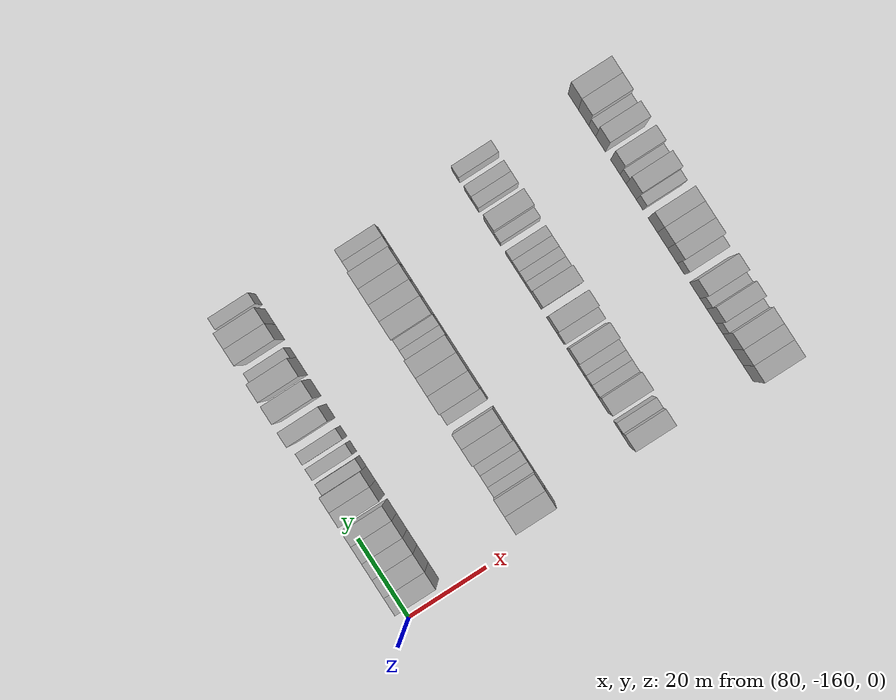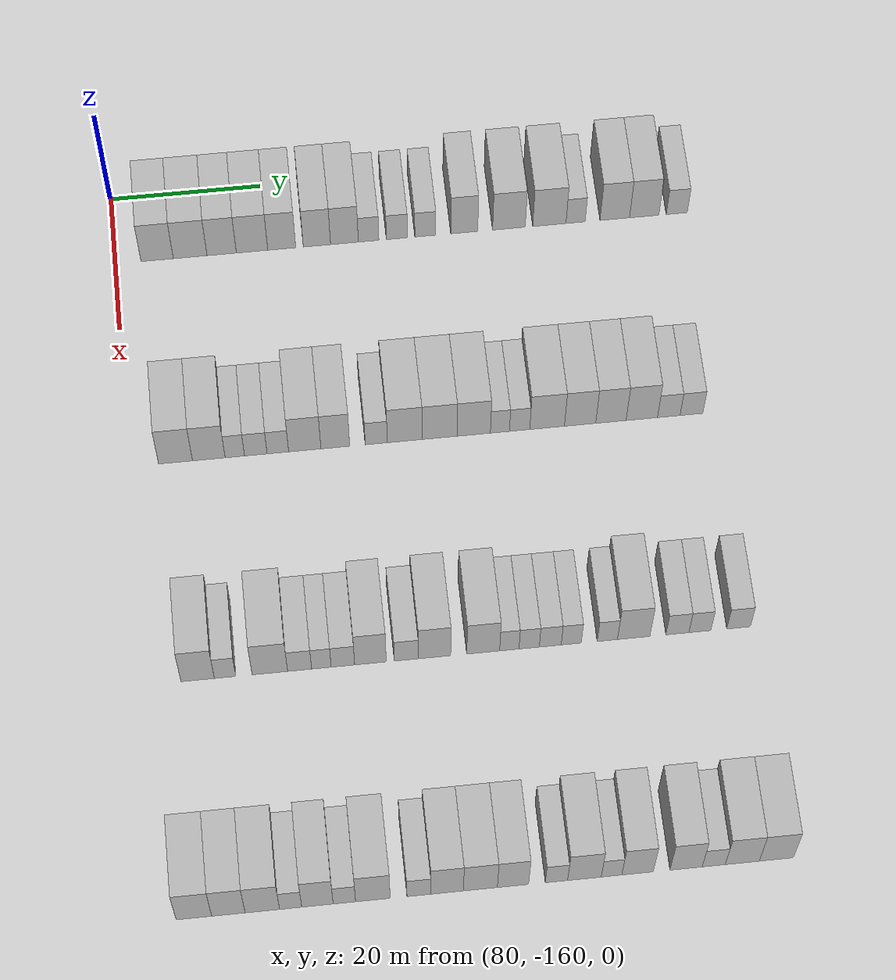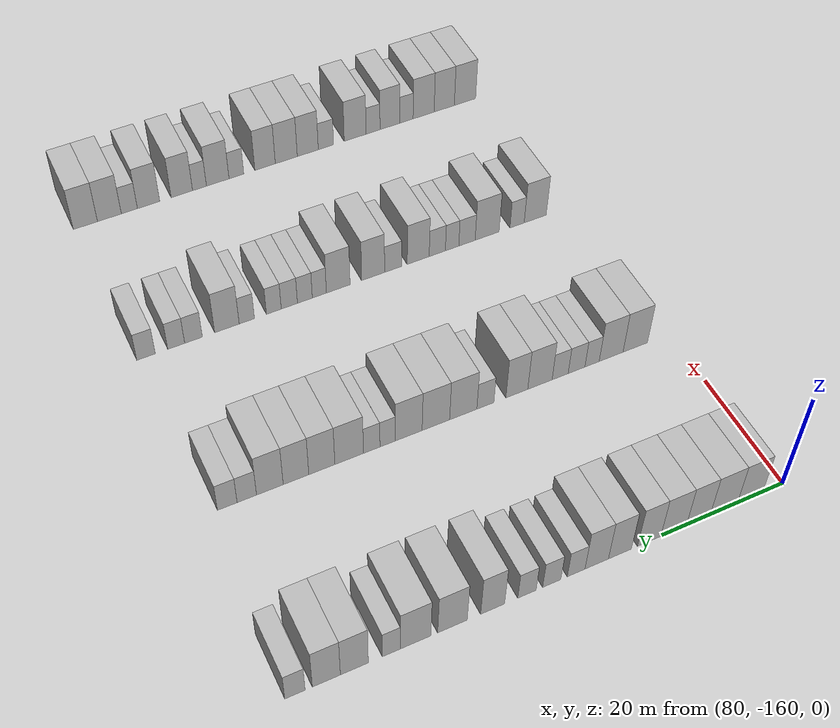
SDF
<sdf version="1.6">
 <world name="default">
  <model name="building_523">
   <static>1</static>
   <pose>85.0000 -154.4309 0 0.000000 0.000000 0.000000</pose>
   <link name="link">
    <pose>0 0 4.50 0 0 0</pose>
    <collision name="collision"><geometry><box><size>10.0000 4.2724 9.0000</size></box></geometry></collision>
    <visual name="visual">
     <cast_shadows>0</cast_shadows>
     <geometry><box><size>10.0000 4.2724 9.0000</size></box></geometry>
     <material>
      <script>
       <uri>model://HANNAS_wall/materials/scripts</uri>
       <uri>model://HANNAS_wall/materials/textures</uri>
       <name>vrc/HANNAS_wall</name>
      </script>
     </material>
    </visual>
   </link>
  </model>
  <model name="building_524">
   <static>1</static>
   <pose>85.0000 -150.0572 0 0.000000 0.000000 0.000000</pose>
   <link name="link">
    <pose>0 0 4.50 0 0 0</pose>
    <collision name="collision"><geometry><box><size>10.0000 4.4751 9.0000</size></box></geometry></collision>
    <visual name="visual">
     <cast_shadows>0</cast_shadows>
     <geometry><box><size>10.0000 4.4751 9.0000</size></box></geometry>
     <material>
      <script>
       <uri>model://HANNAS_wall/materials/scripts</uri>
       <uri>model://HANNAS_wall/materials/textures</uri>
       <name>vrc/HANNAS_wall</name>
      </script>
     </material>
    </visual>
   </link>
  </model>
  <model name="building_525">
   <static>1</static>
   <pose>85.0000 -145.8691 0 0.000000 0.000000 0.000000</pose>
   <link name="link">
    <pose>0 0 4.50 0 0 0</pose>
    <collision name="collision"><geometry><box><size>10.0000 3.9010 9.0000</size></box></geometry></collision>
    <visual name="visual">
     <cast_shadows>0</cast_shadows>
     <geometry><box><size>10.0000 3.9010 9.0000</size></box></geometry>
     <material>
      <script>
       <uri>model://HANNAS_wall/materials/scripts</uri>
       <uri>model://HANNAS_wall/materials/textures</uri>
       <name>vrc/HANNAS_wall</name>
      </script>
     </material>
    </visual>
   </link>
  </model>
  <model name="building_526">
   <static>1</static>
   <pose>85.0000 -141.8304 0 0.000000 0.000000 0.000000</pose>
   <link name="link">
    <pose>0 0 4.50 0 0 0</pose>
    <collision name="collision"><geometry><box><size>10.0000 4.1765 9.0000</size></box></geometry></collision>
    <visual name="visual">
     <cast_shadows>0</cast_shadows>
     <geometry><box><size>10.0000 4.1765 9.0000</size></box></geometry>
     <material>
      <script>
       <uri>model://HANNAS_wall/materials/scripts</uri>
       <uri>model://HANNAS_wall/materials/textures</uri>
       <name>vrc/HANNAS_wall</name>
      </script>
     </material>
    </visual>
   </link>
  </model>
  <model name="building_527">
   <static>1</static>
   <pose>85.0000 -137.8835 0 0.000000 0.000000 0.000000</pose>
   <link name="link">
    <pose>0 0 4.50 0 0 0</pose>
    <collision name="collision"><geometry><box><size>10.0000 3.7172 9.0000</size></box></geometry></collision>
    <visual name="visual">
     <cast_shadows>0</cast_shadows>
     <geometry><box><size>10.0000 3.7172 9.0000</size></box></geometry>
     <material>
      <script>
       <uri>model://HANNAS_wall/materials/scripts</uri>
       <uri>model://HANNAS_wall/materials/textures</uri>
       <name>vrc/HANNAS_wall</name>
      </script>
     </material>
    </visual>
   </link>
  </model>
  <model name="building_528">
   <static>1</static>
   <pose>85.0000 -133.2102 0 0.000000 0.000000 0.000000</pose>
   <link name="link">
    <pose>0 0 4.50 0 0 0</pose>
    <collision name="collision"><geometry><box><size>10.0000 3.6293 9.0000</size></box></geometry></collision>
    <visual name="visual">
     <cast_shadows>0</cast_shadows>
     <geometry><box><size>10.0000 3.6293 9.0000</size></box></geometry>
     <material>
      <script>
       <uri>model://HANNAS_wall/materials/scripts</uri>
       <uri>model://HANNAS_wall/materials/textures</uri>
       <name>vrc/HANNAS_wall</name>
      </script>
     </material>
    </visual>
   </link>
  </model>
  <model name="building_529">
   <static>1</static>
   <pose>85.0000 -129.5449 0 0.000000 0.000000 0.000000</pose>
   <link name="link">
    <pose>0 0 4.50 0 0 0</pose>
    <collision name="collision"><geometry><box><size>10.0000 3.7014 9.0000</size></box></geometry></collision>
    <visual name="visual">
     <cast_shadows>0</cast_shadows>
     <geometry><box><size>10.0000 3.7014 9.0000</size></box></geometry>
     <material>
      <script>
       <uri>model://HANNAS_wall/materials/scripts</uri>
       <uri>model://HANNAS_wall/materials/textures</uri>
       <name>vrc/HANNAS_wall</name>
      </script>
     </material>
    </visual>
   </link>
  </model>
  <model name="building_530">
   <static>1</static>
   <pose>85.0000 -126.3220 0 0.000000 0.000000 0.000000</pose>
   <link name="link">
    <pose>0 0 3.00 0 0 0</pose>
    <collision name="collision"><geometry><box><size>10.0000 2.7443 6.0000</size></box></geometry></collision>
    <visual name="visual">
     <cast_shadows>0</cast_shadows>
     <geometry><box><size>10.0000 2.7443 6.0000</size></box></geometry>
     <material>
      <script>
       <uri>model://HANNAS_wall/materials/scripts</uri>
       <uri>model://HANNAS_wall/materials/textures</uri>
       <name>vrc/HANNAS_wall</name>
      </script>
     </material>
    </visual>
   </link>
  </model>
  <model name="building_531">
   <static>1</static>
   <pose>85.0000 -122.5462 0 0.000000 0.000000 0.000000</pose>
   <link name="link">
    <pose>0 0 3.00 0 0 0</pose>
    <collision name="collision"><geometry><box><size>10.0000 2.8073 6.0000</size></box></geometry></collision>
    <visual name="visual">
     <cast_shadows>0</cast_shadows>
     <geometry><box><size>10.0000 2.8073 6.0000</size></box></geometry>
     <material>
      <script>
       <uri>model://HANNAS_wall/materials/scripts</uri>
       <uri>model://HANNAS_wall/materials/textures</uri>
       <name>vrc/HANNAS_wall</name>
      </script>
     </material>
    </visual>
   </link>
  </model>
  <model name="building_532">
   <static>1</static>
   <pose>85.0000 -118.7449 0 0.000000 0.000000 0.000000</pose>
   <link name="link">
    <pose>0 0 3.00 0 0 0</pose>
    <collision name="collision"><geometry><box><size>10.0000 2.7954 6.0000</size></box></geometry></collision>
    <visual name="visual">
     <cast_shadows>0</cast_shadows>
     <geometry><box><size>10.0000 2.7954 6.0000</size></box></geometry>
     <material>
      <script>
       <uri>model://HANNAS_wall/materials/scripts</uri>
       <uri>model://HANNAS_wall/materials/textures</uri>
       <name>vrc/HANNAS_wall</name>
      </script>
     </material>
    </visual>
   </link>
  </model>
  <model name="building_533">
   <static>1</static>
   <pose>85.0000 -113.5452 0 0.000000 0.000000 0.000000</pose>
   <link name="link">
    <pose>0 0 4.50 0 0 0</pose>
    <collision name="collision"><geometry><box><size>10.0000 3.6041 9.0000</size></box></geometry></collision>
    <visual name="visual">
     <cast_shadows>0</cast_shadows>
     <geometry><box><size>10.0000 3.6041 9.0000</size></box></geometry>
     <material>
      <script>
       <uri>model://HANNAS_wall/materials/scripts</uri>
       <uri>model://HANNAS_wall/materials/textures</uri>
       <name>vrc/HANNAS_wall</name>
      </script>
     </material>
    </visual>
   </link>
  </model>
  <model name="building_534">
   <static>1</static>
   <pose>85.0000 -107.5557 0 0.000000 0.000000 0.000000</pose>
   <link name="link">
    <pose>0 0 4.50 0 0 0</pose>
    <collision name="collision"><geometry><box><size>10.0000 4.3749 9.0000</size></box></geometry></collision>
    <visual name="visual">
     <cast_shadows>0</cast_shadows>
     <geometry><box><size>10.0000 4.3749 9.0000</size></box></geometry>
     <material>
      <script>
       <uri>model://HANNAS_wall/materials/scripts</uri>
       <uri>model://HANNAS_wall/materials/textures</uri>
       <name>vrc/HANNAS_wall</name>
      </script>
     </material>
    </visual>
   </link>
  </model>
  <model name="building_535">
   <static>1</static>
   <pose>85.0000 -102.1350 0 0.000000 0.000000 0.000000</pose>
   <link name="link">
    <pose>0 0 4.50 0 0 0</pose>
    <collision name="collision"><geometry><box><size>10.0000 4.4664 9.0000</size></box></geometry></collision>
    <visual name="visual">
     <cast_shadows>0</cast_shadows>
     <geometry><box><size>10.0000 4.4664 9.0000</size></box></geometry>
     <material>
      <script>
       <uri>model://HANNAS_wall/materials/scripts</uri>
       <uri>model://HANNAS_wall/materials/textures</uri>
       <name>vrc/HANNAS_wall</name>
      </script>
     </material>
    </visual>
   </link>
  </model>
  <model name="building_536">
   <static>1</static>
   <pose>85.0000 -98.6148 0 0.000000 0.000000 0.000000</pose>
   <link name="link">
    <pose>0 0 3.00 0 0 0</pose>
    <collision name="collision"><geometry><box><size>10.0000 2.5741 6.0000</size></box></geometry></collision>
    <visual name="visual">
     <cast_shadows>0</cast_shadows>
     <geometry><box><size>10.0000 2.5741 6.0000</size></box></geometry>
     <material>
      <script>
       <uri>model://HANNAS_wall/materials/scripts</uri>
       <uri>model://HANNAS_wall/materials/textures</uri>
       <name>vrc/HANNAS_wall</name>
      </script>
     </material>
    </visual>
   </link>
  </model>
  <model name="building_537">
   <static>1</static>
   <pose>85.0000 -93.3436 0 0.000000 0.000000 0.000000</pose>
   <link name="link">
    <pose>0 0 4.50 0 0 0</pose>
    <collision name="collision"><geometry><box><size>10.0000 3.9681 9.0000</size></box></geometry></collision>
    <visual name="visual">
     <cast_shadows>0</cast_shadows>
     <geometry><box><size>10.0000 3.9681 9.0000</size></box></geometry>
     <material>
      <script>
       <uri>model://HANNAS_wall/materials/scripts</uri>
       <uri>model://HANNAS_wall/materials/textures</uri>
       <name>vrc/HANNAS_wall</name>
      </script>
     </material>
    </visual>
   </link>
  </model>
  <model name="building_538">
   <static>1</static>
   <pose>85.0000 -89.3867 0 0.000000 0.000000 0.000000</pose>
   <link name="link">
    <pose>0 0 4.50 0 0 0</pose>
    <collision name="collision"><geometry><box><size>10.0000 3.9457 9.0000</size></box></geometry></collision>
    <visual name="visual">
     <cast_shadows>0</cast_shadows>
     <geometry><box><size>10.0000 3.9457 9.0000</size></box></geometry>
     <material>
      <script>
       <uri>model://HANNAS_wall/materials/scripts</uri>
       <uri>model://HANNAS_wall/materials/textures</uri>
       <name>vrc/HANNAS_wall</name>
      </script>
     </material>
    </visual>
   </link>
  </model>
  <model name="building_539">
   <static>1</static>
   <pose>85.0000 -85.0003 0 0.000000 0.000000 0.000000</pose>
   <link name="link">
    <pose>0 0 3.00 0 0 0</pose>
    <collision name="collision"><geometry><box><size>10.0000 2.8271 6.0000</size></box></geometry></collision>
    <visual name="visual">
     <cast_shadows>0</cast_shadows>
     <geometry><box><size>10.0000 2.8271 6.0000</size></box></geometry>
     <material>
      <script>
       <uri>model://HANNAS_wall/materials/scripts</uri>
       <uri>model://HANNAS_wall/materials/textures</uri>
       <name>vrc/HANNAS_wall</name>
      </script>
     </material>
    </visual>
   </link>
  </model>
  <model name="building_744">
   <static>1</static>
   <pose>115.0000 -153.8746 0 0.000000 0.000000 0.000000</pose>
   <link name="link">
    <pose>0 0 4.50 0 0 0</pose>
    <collision name="collision"><geometry><box><size>10.0000 4.3307 9.0000</size></box></geometry></collision>
    <visual name="visual">
     <cast_shadows>0</cast_shadows>
     <geometry><box><size>10.0000 4.3307 9.0000</size></box></geometry>
     <material>
      <script>
       <uri>model://HANNAS_wall/materials/scripts</uri>
       <uri>model://HANNAS_wall/materials/textures</uri>
       <name>vrc/HANNAS_wall</name>
      </script>
     </material>
    </visual>
   </link>
  </model>
  <model name="building_745">
   <static>1</static>
   <pose>115.0000 -149.6188 0 0.000000 0.000000 0.000000</pose>
   <link name="link">
    <pose>0 0 4.50 0 0 0</pose>
    <collision name="collision"><geometry><box><size>10.0000 4.1810 9.0000</size></box></geometry></collision>
    <visual name="visual">
     <cast_shadows>0</cast_shadows>
     <geometry><box><size>10.0000 4.1810 9.0000</size></box></geometry>
     <material>
      <script>
       <uri>model://HANNAS_wall/materials/scripts</uri>
       <uri>model://HANNAS_wall/materials/textures</uri>
       <name>vrc/HANNAS_wall</name>
      </script>
     </material>
    </visual>
   </link>
  </model>
  <model name="building_746">
   <static>1</static>
   <pose>115.0000 -146.2890 0 0.000000 0.000000 0.000000</pose>
   <link name="link">
    <pose>0 0 3.00 0 0 0</pose>
    <collision name="collision"><geometry><box><size>10.0000 2.4787 6.0000</size></box></geometry></collision>
    <visual name="visual">
     <cast_shadows>0</cast_shadows>
     <geometry><box><size>10.0000 2.4787 6.0000</size></box></geometry>
     <material>
      <script>
       <uri>model://HANNAS_wall/materials/scripts</uri>
       <uri>model://HANNAS_wall/materials/textures</uri>
       <name>vrc/HANNAS_wall</name>
      </script>
     </material>
    </visual>
   </link>
  </model>
  <model name="building_747">
   <static>1</static>
   <pose>115.0000 -143.6018 0 0.000000 0.000000 0.000000</pose>
   <link name="link">
    <pose>0 0 3.00 0 0 0</pose>
    <collision name="collision"><geometry><box><size>10.0000 2.8956 6.0000</size></box></geometry></collision>
    <visual name="visual">
     <cast_shadows>0</cast_shadows>
     <geometry><box><size>10.0000 2.8956 6.0000</size></box></geometry>
     <material>
      <script>
       <uri>model://HANNAS_wall/materials/scripts</uri>
       <uri>model://HANNAS_wall/materials/textures</uri>
       <name>vrc/HANNAS_wall</name>
      </script>
     </material>
    </visual>
   </link>
  </model>
  <model name="building_748">
   <static>1</static>
   <pose>115.0000 -140.7740 0 0.000000 0.000000 0.000000</pose>
   <link name="link">
    <pose>0 0 3.00 0 0 0</pose>
    <collision name="collision"><geometry><box><size>10.0000 2.7600 6.0000</size></box></geometry></collision>
    <visual name="visual">
     <cast_shadows>0</cast_shadows>
     <geometry><box><size>10.0000 2.7600 6.0000</size></box></geometry>
     <material>
      <script>
       <uri>model://HANNAS_wall/materials/scripts</uri>
       <uri>model://HANNAS_wall/materials/textures</uri>
       <name>vrc/HANNAS_wall</name>
      </script>
     </material>
    </visual>
   </link>
  </model>
  <model name="building_749">
   <static>1</static>
   <pose>115.0000 -137.3222 0 0.000000 0.000000 0.000000</pose>
   <link name="link">
    <pose>0 0 4.50 0 0 0</pose>
    <collision name="collision"><geometry><box><size>10.0000 4.1437 9.0000</size></box></geometry></collision>
    <visual name="visual">
     <cast_shadows>0</cast_shadows>
     <geometry><box><size>10.0000 4.1437 9.0000</size></box></geometry>
     <material>
      <script>
       <uri>model://HANNAS_wall/materials/scripts</uri>
       <uri>model://HANNAS_wall/materials/textures</uri>
       <name>vrc/HANNAS_wall</name>
      </script>
     </material>
    </visual>
   </link>
  </model>
  <model name="building_750">
   <static>1</static>
   <pose>115.0000 -133.4044 0 0.000000 0.000000 0.000000</pose>
   <link name="link">
    <pose>0 0 4.50 0 0 0</pose>
    <collision name="collision"><geometry><box><size>10.0000 3.6919 9.0000</size></box></geometry></collision>
    <visual name="visual">
     <cast_shadows>0</cast_shadows>
     <geometry><box><size>10.0000 3.6919 9.0000</size></box></geometry>
     <material>
      <script>
       <uri>model://HANNAS_wall/materials/scripts</uri>
       <uri>model://HANNAS_wall/materials/textures</uri>
       <name>vrc/HANNAS_wall</name>
      </script>
     </material>
    </visual>
   </link>
  </model>
  <model name="building_751">
   <static>1</static>
   <pose>115.0000 -128.1394 0 0.000000 0.000000 0.000000</pose>
   <link name="link">
    <pose>0 0 3.00 0 0 0</pose>
    <collision name="collision"><geometry><box><size>10.0000 2.8380 6.0000</size></box></geometry></collision>
    <visual name="visual">
     <cast_shadows>0</cast_shadows>
     <geometry><box><size>10.0000 2.8380 6.0000</size></box></geometry>
     <material>
      <script>
       <uri>model://HANNAS_wall/materials/scripts</uri>
       <uri>model://HANNAS_wall/materials/textures</uri>
       <name>vrc/HANNAS_wall</name>
      </script>
     </material>
    </visual>
   </link>
  </model>
  <model name="building_752">
   <static>1</static>
   <pose>115.0000 -124.4751 0 0.000000 0.000000 0.000000</pose>
   <link name="link">
    <pose>0 0 4.50 0 0 0</pose>
    <collision name="collision"><geometry><box><size>10.0000 4.4907 9.0000</size></box></geometry></collision>
    <visual name="visual">
     <cast_shadows>0</cast_shadows>
     <geometry><box><size>10.0000 4.4907 9.0000</size></box></geometry>
     <material>
      <script>
       <uri>model://HANNAS_wall/materials/scripts</uri>
       <uri>model://HANNAS_wall/materials/textures</uri>
       <name>vrc/HANNAS_wall</name>
      </script>
     </material>
    </visual>
   </link>
  </model>
  <model name="building_753">
   <static>1</static>
   <pose>115.0000 -119.9884 0 0.000000 0.000000 0.000000</pose>
   <link name="link">
    <pose>0 0 4.50 0 0 0</pose>
    <collision name="collision"><geometry><box><size>10.0000 4.4826 9.0000</size></box></geometry></collision>
    <visual name="visual">
     <cast_shadows>0</cast_shadows>
     <geometry><box><size>10.0000 4.4826 9.0000</size></box></geometry>
     <material>
      <script>
       <uri>model://HANNAS_wall/materials/scripts</uri>
       <uri>model://HANNAS_wall/materials/textures</uri>
       <name>vrc/HANNAS_wall</name>
      </script>
     </material>
    </visual>
   </link>
  </model>
  <model name="building_754">
   <static>1</static>
   <pose>115.0000 -115.5911 0 0.000000 0.000000 0.000000</pose>
   <link name="link">
    <pose>0 0 4.50 0 0 0</pose>
    <collision name="collision"><geometry><box><size>10.0000 4.3121 9.0000</size></box></geometry></collision>
    <visual name="visual">
     <cast_shadows>0</cast_shadows>
     <geometry><box><size>10.0000 4.3121 9.0000</size></box></geometry>
     <material>
      <script>
       <uri>model://HANNAS_wall/materials/scripts</uri>
       <uri>model://HANNAS_wall/materials/textures</uri>
       <name>vrc/HANNAS_wall</name>
      </script>
     </material>
    </visual>
   </link>
  </model>
  <model name="building_755">
   <static>1</static>
   <pose>115.0000 -112.2054 0 0.000000 0.000000 0.000000</pose>
   <link name="link">
    <pose>0 0 3.00 0 0 0</pose>
    <collision name="collision"><geometry><box><size>10.0000 2.4594 6.0000</size></box></geometry></collision>
    <visual name="visual">
     <cast_shadows>0</cast_shadows>
     <geometry><box><size>10.0000 2.4594 6.0000</size></box></geometry>
     <material>
      <script>
       <uri>model://HANNAS_wall/materials/scripts</uri>
       <uri>model://HANNAS_wall/materials/textures</uri>
       <name>vrc/HANNAS_wall</name>
      </script>
     </material>
    </visual>
   </link>
  </model>
  <model name="building_756">
   <static>1</static>
   <pose>115.0000 -109.6665 0 0.000000 0.000000 0.000000</pose>
   <link name="link">
    <pose>0 0 3.00 0 0 0</pose>
    <collision name="collision"><geometry><box><size>10.0000 2.6183 6.0000</size></box></geometry></collision>
    <visual name="visual">
     <cast_shadows>0</cast_shadows>
     <geometry><box><size>10.0000 2.6183 6.0000</size></box></geometry>
     <material>
      <script>
       <uri>model://HANNAS_wall/materials/scripts</uri>
       <uri>model://HANNAS_wall/materials/textures</uri>
       <name>vrc/HANNAS_wall</name>
      </script>
     </material>
    </visual>
   </link>
  </model>
  <model name="building_757">
   <static>1</static>
   <pose>115.0000 -106.1119 0 0.000000 0.000000 0.000000</pose>
   <link name="link">
    <pose>0 0 4.50 0 0 0</pose>
    <collision name="collision"><geometry><box><size>10.0000 4.4907 9.0000</size></box></geometry></collision>
    <visual name="visual">
     <cast_shadows>0</cast_shadows>
     <geometry><box><size>10.0000 4.4907 9.0000</size></box></geometry>
     <material>
      <script>
       <uri>model://HANNAS_wall/materials/scripts</uri>
       <uri>model://HANNAS_wall/materials/textures</uri>
       <name>vrc/HANNAS_wall</name>
      </script>
     </material>
    </visual>
   </link>
  </model>
  <model name="building_758">
   <static>1</static>
   <pose>115.0000 -101.8386 0 0.000000 0.000000 0.000000</pose>
   <link name="link">
    <pose>0 0 4.50 0 0 0</pose>
    <collision name="collision"><geometry><box><size>10.0000 4.0560 9.0000</size></box></geometry></collision>
    <visual name="visual">
     <cast_shadows>0</cast_shadows>
     <geometry><box><size>10.0000 4.0560 9.0000</size></box></geometry>
     <material>
      <script>
       <uri>model://HANNAS_wall/materials/scripts</uri>
       <uri>model://HANNAS_wall/materials/textures</uri>
       <name>vrc/HANNAS_wall</name>
      </script>
     </material>
    </visual>
   </link>
  </model>
  <model name="building_759">
   <static>1</static>
   <pose>115.0000 -97.8409 0 0.000000 0.000000 0.000000</pose>
   <link name="link">
    <pose>0 0 4.50 0 0 0</pose>
    <collision name="collision"><geometry><box><size>10.0000 3.9394 9.0000</size></box></geometry></collision>
    <visual name="visual">
     <cast_shadows>0</cast_shadows>
     <geometry><box><size>10.0000 3.9394 9.0000</size></box></geometry>
     <material>
      <script>
       <uri>model://HANNAS_wall/materials/scripts</uri>
       <uri>model://HANNAS_wall/materials/textures</uri>
       <name>vrc/HANNAS_wall</name>
      </script>
     </material>
    </visual>
   </link>
  </model>
  <model name="building_760">
   <static>1</static>
   <pose>115.0000 -93.8363 0 0.000000 0.000000 0.000000</pose>
   <link name="link">
    <pose>0 0 4.50 0 0 0</pose>
    <collision name="collision"><geometry><box><size>10.0000 4.0697 9.0000</size></box></geometry></collision>
    <visual name="visual">
     <cast_shadows>0</cast_shadows>
     <geometry><box><size>10.0000 4.0697 9.0000</size></box></geometry>
     <material>
      <script>
       <uri>model://HANNAS_wall/materials/scripts</uri>
       <uri>model://HANNAS_wall/materials/textures</uri>
       <name>vrc/HANNAS_wall</name>
      </script>
     </material>
    </visual>
   </link>
  </model>
  <model name="building_761">
   <static>1</static>
   <pose>115.0000 -90.3361 0 0.000000 0.000000 0.000000</pose>
   <link name="link">
    <pose>0 0 3.00 0 0 0</pose>
    <collision name="collision"><geometry><box><size>10.0000 2.9307 6.0000</size></box></geometry></collision>
    <visual name="visual">
     <cast_shadows>0</cast_shadows>
     <geometry><box><size>10.0000 2.9307 6.0000</size></box></geometry>
     <material>
      <script>
       <uri>model://HANNAS_wall/materials/scripts</uri>
       <uri>model://HANNAS_wall/materials/textures</uri>
       <name>vrc/HANNAS_wall</name>
      </script>
     </material>
    </visual>
   </link>
  </model>
  <model name="building_762">
   <static>1</static>
   <pose>115.0000 -87.3943 0 0.000000 0.000000 0.000000</pose>
   <link name="link">
    <pose>0 0 3.00 0 0 0</pose>
    <collision name="collision"><geometry><box><size>10.0000 2.9528 6.0000</size></box></geometry></collision>
    <visual name="visual">
     <cast_shadows>0</cast_shadows>
     <geometry><box><size>10.0000 2.9528 6.0000</size></box></geometry>
     <material>
      <script>
       <uri>model://HANNAS_wall/materials/scripts</uri>
       <uri>model://HANNAS_wall/materials/textures</uri>
       <name>vrc/HANNAS_wall</name>
      </script>
     </material>
    </visual>
   </link>
  </model>
  <model name="building_965">
   <static>1</static>
   <pose>145.0000 -153.0219 0 0.000000 0.000000 0.000000</pose>
   <link name="link">
    <pose>0 0 4.50 0 0 0</pose>
    <collision name="collision"><geometry><box><size>10.0000 4.1162 9.0000</size></box></geometry></collision>
    <visual name="visual">
     <cast_shadows>0</cast_shadows>
     <geometry><box><size>10.0000 4.1162 9.0000</size></box></geometry>
     <material>
      <script>
       <uri>model://HANNAS_wall/materials/scripts</uri>
       <uri>model://HANNAS_wall/materials/textures</uri>
       <name>vrc/HANNAS_wall</name>
      </script>
     </material>
    </visual>
   </link>
  </model>
  <model name="building_966">
   <static>1</static>
   <pose>145.0000 -149.6460 0 0.000000 0.000000 0.000000</pose>
   <link name="link">
    <pose>0 0 3.00 0 0 0</pose>
    <collision name="collision"><geometry><box><size>10.0000 2.6355 6.0000</size></box></geometry></collision>
    <visual name="visual">
     <cast_shadows>0</cast_shadows>
     <geometry><box><size>10.0000 2.6355 6.0000</size></box></geometry>
     <material>
      <script>
       <uri>model://HANNAS_wall/materials/scripts</uri>
       <uri>model://HANNAS_wall/materials/textures</uri>
       <name>vrc/HANNAS_wall</name>
      </script>
     </material>
    </visual>
   </link>
  </model>
  <model name="building_967">
   <static>1</static>
   <pose>145.0000 -144.1339 0 0.000000 0.000000 0.000000</pose>
   <link name="link">
    <pose>0 0 4.50 0 0 0</pose>
    <collision name="collision"><geometry><box><size>10.0000 4.3886 9.0000</size></box></geometry></collision>
    <visual name="visual">
     <cast_shadows>0</cast_shadows>
     <geometry><box><size>10.0000 4.3886 9.0000</size></box></geometry>
     <material>
      <script>
       <uri>model://HANNAS_wall/materials/scripts</uri>
       <uri>model://HANNAS_wall/materials/textures</uri>
       <name>vrc/HANNAS_wall</name>
      </script>
     </material>
    </visual>
   </link>
  </model>
  <model name="building_968">
   <static>1</static>
   <pose>145.0000 -140.4582 0 0.000000 0.000000 0.000000</pose>
   <link name="link">
    <pose>0 0 3.00 0 0 0</pose>
    <collision name="collision"><geometry><box><size>10.0000 2.9628 6.0000</size></box></geometry></collision>
    <visual name="visual">
     <cast_shadows>0</cast_shadows>
     <geometry><box><size>10.0000 2.9628 6.0000</size></box></geometry>
     <material>
      <script>
       <uri>model://HANNAS_wall/materials/scripts</uri>
       <uri>model://HANNAS_wall/materials/textures</uri>
       <name>vrc/HANNAS_wall</name>
      </script>
     </material>
    </visual>
   </link>
  </model>
  <model name="building_969">
   <static>1</static>
   <pose>145.0000 -137.7696 0 0.000000 0.000000 0.000000</pose>
   <link name="link">
    <pose>0 0 3.00 0 0 0</pose>
    <collision name="collision"><geometry><box><size>10.0000 2.4143 6.0000</size></box></geometry></collision>
    <visual name="visual">
     <cast_shadows>0</cast_shadows>
     <geometry><box><size>10.0000 2.4143 6.0000</size></box></geometry>
     <material>
      <script>
       <uri>model://HANNAS_wall/materials/scripts</uri>
       <uri>model://HANNAS_wall/materials/textures</uri>
       <name>vrc/HANNAS_wall</name>
      </script>
     </material>
    </visual>
   </link>
  </model>
  <model name="building_970">
   <static>1</static>
   <pose>145.0000 -135.1097 0 0.000000 0.000000 0.000000</pose>
   <link name="link">
    <pose>0 0 3.00 0 0 0</pose>
    <collision name="collision"><geometry><box><size>10.0000 2.9056 6.0000</size></box></geometry></collision>
    <visual name="visual">
     <cast_shadows>0</cast_shadows>
     <geometry><box><size>10.0000 2.9056 6.0000</size></box></geometry>
     <material>
      <script>
       <uri>model://HANNAS_wall/materials/scripts</uri>
       <uri>model://HANNAS_wall/materials/textures</uri>
       <name>vrc/HANNAS_wall</name>
      </script>
     </material>
    </visual>
   </link>
  </model>
  <model name="building_971">
   <static>1</static>
   <pose>145.0000 -131.7015 0 0.000000 0.000000 0.000000</pose>
   <link name="link">
    <pose>0 0 4.50 0 0 0</pose>
    <collision name="collision"><geometry><box><size>10.0000 3.9108 9.0000</size></box></geometry></collision>
    <visual name="visual">
     <cast_shadows>0</cast_shadows>
     <geometry><box><size>10.0000 3.9108 9.0000</size></box></geometry>
     <material>
      <script>
       <uri>model://HANNAS_wall/materials/scripts</uri>
       <uri>model://HANNAS_wall/materials/textures</uri>
       <name>vrc/HANNAS_wall</name>
      </script>
     </material>
    </visual>
   </link>
  </model>
  <model name="building_972">
   <static>1</static>
   <pose>145.0000 -127.2537 0 0.000000 0.000000 0.000000</pose>
   <link name="link">
    <pose>0 0 3.00 0 0 0</pose>
    <collision name="collision"><geometry><box><size>10.0000 2.9848 6.0000</size></box></geometry></collision>
    <visual name="visual">
     <cast_shadows>0</cast_shadows>
     <geometry><box><size>10.0000 2.9848 6.0000</size></box></geometry>
     <material>
      <script>
       <uri>model://HANNAS_wall/materials/scripts</uri>
       <uri>model://HANNAS_wall/materials/textures</uri>
       <name>vrc/HANNAS_wall</name>
      </script>
     </material>
    </visual>
   </link>
  </model>
  <model name="building_973">
   <static>1</static>
   <pose>145.0000 -123.7628 0 0.000000 0.000000 0.000000</pose>
   <link name="link">
    <pose>0 0 4.50 0 0 0</pose>
    <collision name="collision"><geometry><box><size>10.0000 3.9970 9.0000</size></box></geometry></collision>
    <visual name="visual">
     <cast_shadows>0</cast_shadows>
     <geometry><box><size>10.0000 3.9970 9.0000</size></box></geometry>
     <material>
      <script>
       <uri>model://HANNAS_wall/materials/scripts</uri>
       <uri>model://HANNAS_wall/materials/textures</uri>
       <name>vrc/HANNAS_wall</name>
      </script>
     </material>
    </visual>
   </link>
  </model>
  <model name="building_974">
   <static>1</static>
   <pose>145.0000 -117.7240 0 0.000000 0.000000 0.000000</pose>
   <link name="link">
    <pose>0 0 4.50 0 0 0</pose>
    <collision name="collision"><geometry><box><size>10.0000 4.0807 9.0000</size></box></geometry></collision>
    <visual name="visual">
     <cast_shadows>0</cast_shadows>
     <geometry><box><size>10.0000 4.0807 9.0000</size></box></geometry>
     <material>
      <script>
       <uri>model://HANNAS_wall/materials/scripts</uri>
       <uri>model://HANNAS_wall/materials/textures</uri>
       <name>vrc/HANNAS_wall</name>
      </script>
     </material>
    </visual>
   </link>
  </model>
  <model name="building_975">
   <static>1</static>
   <pose>145.0000 -114.4821 0 0.000000 0.000000 0.000000</pose>
   <link name="link">
    <pose>0 0 3.00 0 0 0</pose>
    <collision name="collision"><geometry><box><size>10.0000 2.4030 6.0000</size></box></geometry></collision>
    <visual name="visual">
     <cast_shadows>0</cast_shadows>
     <geometry><box><size>10.0000 2.4030 6.0000</size></box></geometry>
     <material>
      <script>
       <uri>model://HANNAS_wall/materials/scripts</uri>
       <uri>model://HANNAS_wall/materials/textures</uri>
       <name>vrc/HANNAS_wall</name>
      </script>
     </material>
    </visual>
   </link>
  </model>
  <model name="building_976">
   <static>1</static>
   <pose>145.0000 -112.0161 0 0.000000 0.000000 0.000000</pose>
   <link name="link">
    <pose>0 0 3.00 0 0 0</pose>
    <collision name="collision"><geometry><box><size>10.0000 2.5289 6.0000</size></box></geometry></collision>
    <visual name="visual">
     <cast_shadows>0</cast_shadows>
     <geometry><box><size>10.0000 2.5289 6.0000</size></box></geometry>
     <material>
      <script>
       <uri>model://HANNAS_wall/materials/scripts</uri>
       <uri>model://HANNAS_wall/materials/textures</uri>
       <name>vrc/HANNAS_wall</name>
      </script>
     </material>
    </visual>
   </link>
  </model>
  <model name="building_977">
   <static>1</static>
   <pose>145.0000 -109.3872 0 0.000000 0.000000 0.000000</pose>
   <link name="link">
    <pose>0 0 3.00 0 0 0</pose>
    <collision name="collision"><geometry><box><size>10.0000 2.7291 6.0000</size></box></geometry></collision>
    <visual name="visual">
     <cast_shadows>0</cast_shadows>
     <geometry><box><size>10.0000 2.7291 6.0000</size></box></geometry>
     <material>
      <script>
       <uri>model://HANNAS_wall/materials/scripts</uri>
       <uri>model://HANNAS_wall/materials/textures</uri>
       <name>vrc/HANNAS_wall</name>
      </script>
     </material>
    </visual>
   </link>
  </model>
  <model name="building_978">
   <static>1</static>
   <pose>145.0000 -106.7781 0 0.000000 0.000000 0.000000</pose>
   <link name="link">
    <pose>0 0 3.00 0 0 0</pose>
    <collision name="collision"><geometry><box><size>10.0000 2.4890 6.0000</size></box></geometry></collision>
    <visual name="visual">
     <cast_shadows>0</cast_shadows>
     <geometry><box><size>10.0000 2.4890 6.0000</size></box></geometry>
     <material>
      <script>
       <uri>model://HANNAS_wall/materials/scripts</uri>
       <uri>model://HANNAS_wall/materials/textures</uri>
       <name>vrc/HANNAS_wall</name>
      </script>
     </material>
    </visual>
   </link>
  </model>
  <model name="building_979">
   <static>1</static>
   <pose>145.0000 -102.2695 0 0.000000 0.000000 0.000000</pose>
   <link name="link">
    <pose>0 0 3.00 0 0 0</pose>
    <collision name="collision"><geometry><box><size>10.0000 2.5282 6.0000</size></box></geometry></collision>
    <visual name="visual">
     <cast_shadows>0</cast_shadows>
     <geometry><box><size>10.0000 2.5282 6.0000</size></box></geometry>
     <material>
      <script>
       <uri>model://HANNAS_wall/materials/scripts</uri>
       <uri>model://HANNAS_wall/materials/textures</uri>
       <name>vrc/HANNAS_wall</name>
      </script>
     </material>
    </visual>
   </link>
  </model>
  <model name="building_980">
   <static>1</static>
   <pose>145.0000 -98.9803 0 0.000000 0.000000 0.000000</pose>
   <link name="link">
    <pose>0 0 4.50 0 0 0</pose>
    <collision name="collision"><geometry><box><size>10.0000 4.0504 9.0000</size></box></geometry></collision>
    <visual name="visual">
     <cast_shadows>0</cast_shadows>
     <geometry><box><size>10.0000 4.0504 9.0000</size></box></geometry>
     <material>
      <script>
       <uri>model://HANNAS_wall/materials/scripts</uri>
       <uri>model://HANNAS_wall/materials/textures</uri>
       <name>vrc/HANNAS_wall</name>
      </script>
     </material>
    </visual>
   </link>
  </model>
  <model name="building_981">
   <static>1</static>
   <pose>145.0000 -93.5164 0 0.000000 0.000000 0.000000</pose>
   <link name="link">
    <pose>0 0 3.00 0 0 0</pose>
    <collision name="collision"><geometry><box><size>10.0000 2.8773 6.0000</size></box></geometry></collision>
    <visual name="visual">
     <cast_shadows>0</cast_shadows>
     <geometry><box><size>10.0000 2.8773 6.0000</size></box></geometry>
     <material>
      <script>
       <uri>model://HANNAS_wall/materials/scripts</uri>
       <uri>model://HANNAS_wall/materials/textures</uri>
       <name>vrc/HANNAS_wall</name>
      </script>
     </material>
    </visual>
   </link>
  </model>
  <model name="building_982">
   <static>1</static>
   <pose>145.0000 -90.7094 0 0.000000 0.000000 0.000000</pose>
   <link name="link">
    <pose>0 0 3.00 0 0 0</pose>
    <collision name="collision"><geometry><box><size>10.0000 2.7367 6.0000</size></box></geometry></collision>
    <visual name="visual">
     <cast_shadows>0</cast_shadows>
     <geometry><box><size>10.0000 2.7367 6.0000</size></box></geometry>
     <material>
      <script>
       <uri>model://HANNAS_wall/materials/scripts</uri>
       <uri>model://HANNAS_wall/materials/textures</uri>
       <name>vrc/HANNAS_wall</name>
      </script>
     </material>
    </visual>
   </link>
  </model>
  <model name="building_983">
   <static>1</static>
   <pose>145.0000 -85.8638 0 0.000000 0.000000 0.000000</pose>
   <link name="link">
    <pose>0 0 3.00 0 0 0</pose>
    <collision name="collision"><geometry><box><size>10.0000 2.9544 6.0000</size></box></geometry></collision>
    <visual name="visual">
     <cast_shadows>0</cast_shadows>
     <geometry><box><size>10.0000 2.9544 6.0000</size></box></geometry>
     <material>
      <script>
       <uri>model://HANNAS_wall/materials/scripts</uri>
       <uri>model://HANNAS_wall/materials/textures</uri>
       <name>vrc/HANNAS_wall</name>
      </script>
     </material>
    </visual>
   </link>
  </model>
  <model name="building_1182">
   <static>1</static>
   <pose>175.0000 -155.4479 0 0.000000 0.000000 0.000000</pose>
   <link name="link">
    <pose>0 0 4.50 0 0 0</pose>
    <collision name="collision"><geometry><box><size>10.0000 4.2037 9.0000</size></box></geometry></collision>
    <visual name="visual">
     <cast_shadows>0</cast_shadows>
     <geometry><box><size>10.0000 4.2037 9.0000</size></box></geometry>
     <material>
      <script>
       <uri>model://HANNAS_wall/materials/scripts</uri>
       <uri>model://HANNAS_wall/materials/textures</uri>
       <name>vrc/HANNAS_wall</name>
      </script>
     </material>
    </visual>
   </link>
  </model>
  <model name="building_1183">
   <static>1</static>
   <pose>175.0000 -151.3687 0 0.000000 0.000000 0.000000</pose>
   <link name="link">
    <pose>0 0 4.50 0 0 0</pose>
    <collision name="collision"><geometry><box><size>10.0000 3.9545 9.0000</size></box></geometry></collision>
    <visual name="visual">
     <cast_shadows>0</cast_shadows>
     <geometry><box><size>10.0000 3.9545 9.0000</size></box></geometry>
     <material>
      <script>
       <uri>model://HANNAS_wall/materials/scripts</uri>
       <uri>model://HANNAS_wall/materials/textures</uri>
       <name>vrc/HANNAS_wall</name>
      </script>
     </material>
    </visual>
   </link>
  </model>
  <model name="building_1184">
   <static>1</static>
   <pose>175.0000 -147.3489 0 0.000000 0.000000 0.000000</pose>
   <link name="link">
    <pose>0 0 4.50 0 0 0</pose>
    <collision name="collision"><geometry><box><size>10.0000 4.0851 9.0000</size></box></geometry></collision>
    <visual name="visual">
     <cast_shadows>0</cast_shadows>
     <geometry><box><size>10.0000 4.0851 9.0000</size></box></geometry>
     <material>
      <script>
       <uri>model://HANNAS_wall/materials/scripts</uri>
       <uri>model://HANNAS_wall/materials/textures</uri>
       <name>vrc/HANNAS_wall</name>
      </script>
     </material>
    </visual>
   </link>
  </model>
  <model name="building_1185">
   <static>1</static>
   <pose>175.0000 -143.9941 0 0.000000 0.000000 0.000000</pose>
   <link name="link">
    <pose>0 0 3.00 0 0 0</pose>
    <collision name="collision"><geometry><box><size>10.0000 2.6245 6.0000</size></box></geometry></collision>
    <visual name="visual">
     <cast_shadows>0</cast_shadows>
     <geometry><box><size>10.0000 2.6245 6.0000</size></box></geometry>
     <material>
      <script>
       <uri>model://HANNAS_wall/materials/scripts</uri>
       <uri>model://HANNAS_wall/materials/textures</uri>
       <name>vrc/HANNAS_wall</name>
      </script>
     </material>
    </visual>
   </link>
  </model>
  <model name="building_1186">
   <static>1</static>
   <pose>175.0000 -140.8136 0 0.000000 0.000000 0.000000</pose>
   <link name="link">
    <pose>0 0 4.50 0 0 0</pose>
    <collision name="collision"><geometry><box><size>10.0000 3.7366 9.0000</size></box></geometry></collision>
    <visual name="visual">
     <cast_shadows>0</cast_shadows>
     <geometry><box><size>10.0000 3.7366 9.0000</size></box></geometry>
     <material>
      <script>
       <uri>model://HANNAS_wall/materials/scripts</uri>
       <uri>model://HANNAS_wall/materials/textures</uri>
       <name>vrc/HANNAS_wall</name>
      </script>
     </material>
    </visual>
   </link>
  </model>
  <model name="building_1187">
   <static>1</static>
   <pose>175.0000 -137.6167 0 0.000000 0.000000 0.000000</pose>
   <link name="link">
    <pose>0 0 3.00 0 0 0</pose>
    <collision name="collision"><geometry><box><size>10.0000 2.6573 6.0000</size></box></geometry></collision>
    <visual name="visual">
     <cast_shadows>0</cast_shadows>
     <geometry><box><size>10.0000 2.6573 6.0000</size></box></geometry>
     <material>
      <script>
       <uri>model://HANNAS_wall/materials/scripts</uri>
       <uri>model://HANNAS_wall/materials/textures</uri>
       <name>vrc/HANNAS_wall</name>
      </script>
     </material>
    </visual>
   </link>
  </model>
  <model name="building_1188">
   <static>1</static>
   <pose>175.0000 -134.2287 0 0.000000 0.000000 0.000000</pose>
   <link name="link">
    <pose>0 0 4.50 0 0 0</pose>
    <collision name="collision"><geometry><box><size>10.0000 4.1187 9.0000</size></box></geometry></collision>
    <visual name="visual">
     <cast_shadows>0</cast_shadows>
     <geometry><box><size>10.0000 4.1187 9.0000</size></box></geometry>
     <material>
      <script>
       <uri>model://HANNAS_wall/materials/scripts</uri>
       <uri>model://HANNAS_wall/materials/textures</uri>
       <name>vrc/HANNAS_wall</name>
      </script>
     </material>
    </visual>
   </link>
  </model>
  <model name="building_1189">
   <static>1</static>
   <pose>175.0000 -128.7458 0 0.000000 0.000000 0.000000</pose>
   <link name="link">
    <pose>0 0 3.00 0 0 0</pose>
    <collision name="collision"><geometry><box><size>10.0000 2.8471 6.0000</size></box></geometry></collision>
    <visual name="visual">
     <cast_shadows>0</cast_shadows>
     <geometry><box><size>10.0000 2.8471 6.0000</size></box></geometry>
     <material>
      <script>
       <uri>model://HANNAS_wall/materials/scripts</uri>
       <uri>model://HANNAS_wall/materials/textures</uri>
       <name>vrc/HANNAS_wall</name>
      </script>
     </material>
    </visual>
   </link>
  </model>
  <model name="building_1190">
   <static>1</static>
   <pose>175.0000 -125.3802 0 0.000000 0.000000 0.000000</pose>
   <link name="link">
    <pose>0 0 4.50 0 0 0</pose>
    <collision name="collision"><geometry><box><size>10.0000 3.8841 9.0000</size></box></geometry></collision>
    <visual name="visual">
     <cast_shadows>0</cast_shadows>
     <geometry><box><size>10.0000 3.8841 9.0000</size></box></geometry>
     <material>
      <script>
       <uri>model://HANNAS_wall/materials/scripts</uri>
       <uri>model://HANNAS_wall/materials/textures</uri>
       <name>vrc/HANNAS_wall</name>
      </script>
     </material>
    </visual>
   </link>
  </model>
  <model name="building_1191">
   <static>1</static>
   <pose>175.0000 -121.4164 0 0.000000 0.000000 0.000000</pose>
   <link name="link">
    <pose>0 0 4.50 0 0 0</pose>
    <collision name="collision"><geometry><box><size>10.0000 4.0435 9.0000</size></box></geometry></collision>
    <visual name="visual">
     <cast_shadows>0</cast_shadows>
     <geometry><box><size>10.0000 4.0435 9.0000</size></box></geometry>
     <material>
      <script>
       <uri>model://HANNAS_wall/materials/scripts</uri>
       <uri>model://HANNAS_wall/materials/textures</uri>
       <name>vrc/HANNAS_wall</name>
      </script>
     </material>
    </visual>
   </link>
  </model>
  <model name="building_1192">
   <static>1</static>
   <pose>175.0000 -117.5278 0 0.000000 0.000000 0.000000</pose>
   <link name="link">
    <pose>0 0 4.50 0 0 0</pose>
    <collision name="collision"><geometry><box><size>10.0000 3.7338 9.0000</size></box></geometry></collision>
    <visual name="visual">
     <cast_shadows>0</cast_shadows>
     <geometry><box><size>10.0000 3.7338 9.0000</size></box></geometry>
     <material>
      <script>
       <uri>model://HANNAS_wall/materials/scripts</uri>
       <uri>model://HANNAS_wall/materials/textures</uri>
       <name>vrc/HANNAS_wall</name>
      </script>
     </material>
    </visual>
   </link>
  </model>
  <model name="building_1193">
   <static>1</static>
   <pose>175.0000 -112.3316 0 0.000000 0.000000 0.000000</pose>
   <link name="link">
    <pose>0 0 3.00 0 0 0</pose>
    <collision name="collision"><geometry><box><size>10.0000 2.6586 6.0000</size></box></geometry></collision>
    <visual name="visual">
     <cast_shadows>0</cast_shadows>
     <geometry><box><size>10.0000 2.6586 6.0000</size></box></geometry>
     <material>
      <script>
       <uri>model://HANNAS_wall/materials/scripts</uri>
       <uri>model://HANNAS_wall/materials/textures</uri>
       <name>vrc/HANNAS_wall</name>
      </script>
     </material>
    </visual>
   </link>
  </model>
  <model name="building_1194">
   <static>1</static>
   <pose>175.0000 -108.9832 0 0.000000 0.000000 0.000000</pose>
   <link name="link">
    <pose>0 0 4.50 0 0 0</pose>
    <collision name="collision"><geometry><box><size>10.0000 4.0381 9.0000</size></box></geometry></collision>
    <visual name="visual">
     <cast_shadows>0</cast_shadows>
     <geometry><box><size>10.0000 4.0381 9.0000</size></box></geometry>
     <material>
      <script>
       <uri>model://HANNAS_wall/materials/scripts</uri>
       <uri>model://HANNAS_wall/materials/textures</uri>
       <name>vrc/HANNAS_wall</name>
      </script>
     </material>
    </visual>
   </link>
  </model>
  <model name="building_1195">
   <static>1</static>
   <pose>175.0000 -105.7317 0 0.000000 0.000000 0.000000</pose>
   <link name="link">
    <pose>0 0 3.00 0 0 0</pose>
    <collision name="collision"><geometry><box><size>10.0000 2.4650 6.0000</size></box></geometry></collision>
    <visual name="visual">
     <cast_shadows>0</cast_shadows>
     <geometry><box><size>10.0000 2.4650 6.0000</size></box></geometry>
     <material>
      <script>
       <uri>model://HANNAS_wall/materials/scripts</uri>
       <uri>model://HANNAS_wall/materials/textures</uri>
       <name>vrc/HANNAS_wall</name>
      </script>
     </material>
    </visual>
   </link>
  </model>
  <model name="building_1196">
   <static>1</static>
   <pose>175.0000 -102.6100 0 0.000000 0.000000 0.000000</pose>
   <link name="link">
    <pose>0 0 4.50 0 0 0</pose>
    <collision name="collision"><geometry><box><size>10.0000 3.7783 9.0000</size></box></geometry></collision>
    <visual name="visual">
     <cast_shadows>0</cast_shadows>
     <geometry><box><size>10.0000 3.7783 9.0000</size></box></geometry>
     <material>
      <script>
       <uri>model://HANNAS_wall/materials/scripts</uri>
       <uri>model://HANNAS_wall/materials/textures</uri>
       <name>vrc/HANNAS_wall</name>
      </script>
     </material>
    </visual>
   </link>
  </model>
  <model name="building_1197">
   <static>1</static>
   <pose>175.0000 -96.7797 0 0.000000 0.000000 0.000000</pose>
   <link name="link">
    <pose>0 0 4.50 0 0 0</pose>
    <collision name="collision"><geometry><box><size>10.0000 3.8824 9.0000</size></box></geometry></collision>
    <visual name="visual">
     <cast_shadows>0</cast_shadows>
     <geometry><box><size>10.0000 3.8824 9.0000</size></box></geometry>
     <material>
      <script>
       <uri>model://HANNAS_wall/materials/scripts</uri>
       <uri>model://HANNAS_wall/materials/textures</uri>
       <name>vrc/HANNAS_wall</name>
      </script>
     </material>
    </visual>
   </link>
  </model>
  <model name="building_1198">
   <static>1</static>
   <pose>175.0000 -93.4526 0 0.000000 0.000000 0.000000</pose>
   <link name="link">
    <pose>0 0 3.00 0 0 0</pose>
    <collision name="collision"><geometry><box><size>10.0000 2.7716 6.0000</size></box></geometry></collision>
    <visual name="visual">
     <cast_shadows>0</cast_shadows>
     <geometry><box><size>10.0000 2.7716 6.0000</size></box></geometry>
     <material>
      <script>
       <uri>model://HANNAS_wall/materials/scripts</uri>
       <uri>model://HANNAS_wall/materials/textures</uri>
       <name>vrc/HANNAS_wall</name>
      </script>
     </material>
    </visual>
   </link>
  </model>
  <model name="building_1199">
   <static>1</static>
   <pose>175.0000 -90.0140 0 0.000000 0.000000 0.000000</pose>
   <link name="link">
    <pose>0 0 4.50 0 0 0</pose>
    <collision name="collision"><geometry><box><size>10.0000 4.1056 9.0000</size></box></geometry></collision>
    <visual name="visual">
     <cast_shadows>0</cast_shadows>
     <geometry><box><size>10.0000 4.1056 9.0000</size></box></geometry>
     <material>
      <script>
       <uri>model://HANNAS_wall/materials/scripts</uri>
       <uri>model://HANNAS_wall/materials/textures</uri>
       <name>vrc/HANNAS_wall</name>
      </script>
     </material>
    </visual>
   </link>
  </model>
  <model name="building_1200">
   <static>1</static>
   <pose>175.0000 -85.9077 0 0.000000 0.000000 0.000000</pose>
   <link name="link">
    <pose>0 0 4.50 0 0 0</pose>
    <collision name="collision"><geometry><box><size>10.0000 4.1071 9.0000</size></box></geometry></collision>
    <visual name="visual">
     <cast_shadows>0</cast_shadows>
     <geometry><box><size>10.0000 4.1071 9.0000</size></box></geometry>
     <material>
      <script>
       <uri>model://HANNAS_wall/materials/scripts</uri>
       <uri>model://HANNAS_wall/materials/textures</uri>
       <name>vrc/HANNAS_wall</name>
      </script>
     </material>
    </visual>
   </link>
  </model>
 </world>
</sdf>
